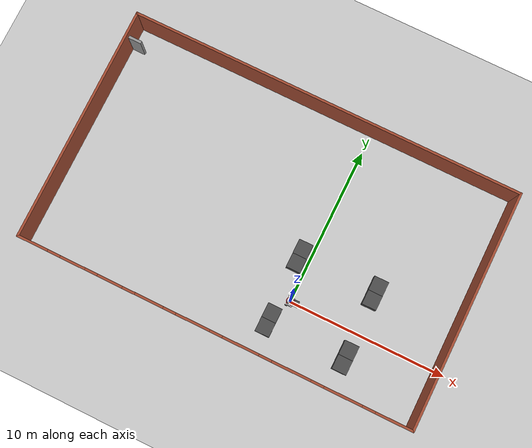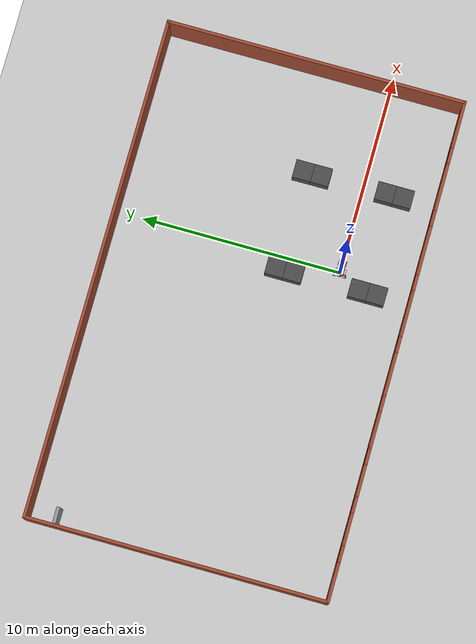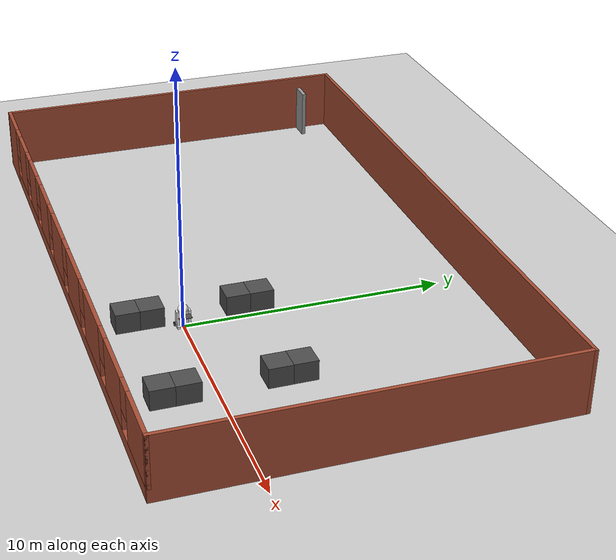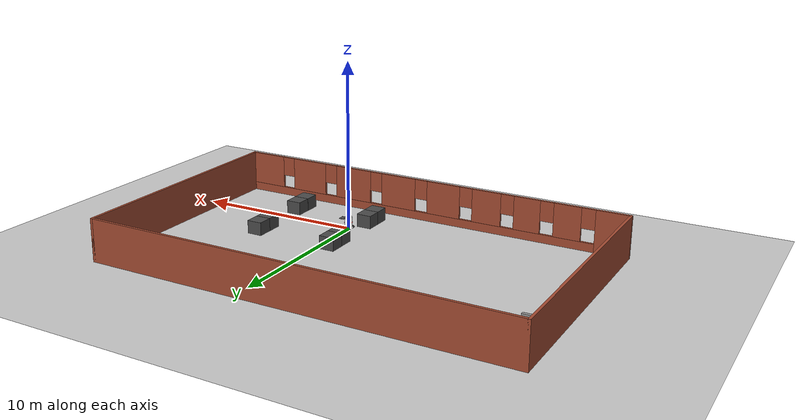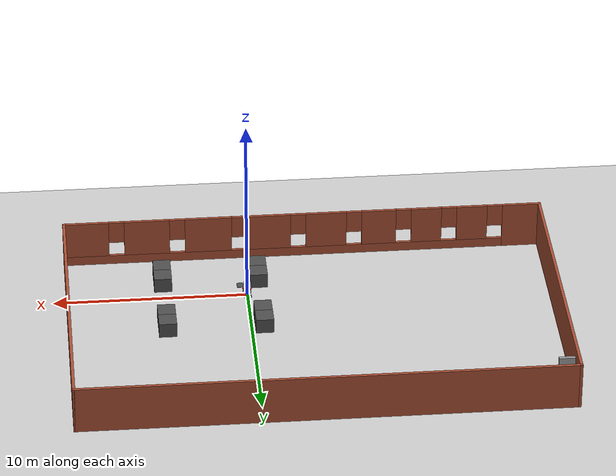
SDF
<sdf version="1.7">
 <world name="default">
  <model name="ground_plane">
   <static>1</static>
   <link name="link">
    <collision name="collision">
     <geometry><plane><normal>0 0 1</normal><size>100 100</size></plane></geometry>
     <surface><friction><ode><mu>100</mu><mu2>50</mu2></ode></friction></surface>
    </collision>
    <visual name="visual">
     <cast_shadows>0</cast_shadows>
     <geometry><plane><normal>0 0 1</normal><size>100 100</size></plane></geometry>
     <material>
      <script><uri>file://media/materials/scripts/gazebo.material</uri><name>Gazebo/Grey</name></script>
     </material>
    </visual>
   </link>
  </model>
  <model name="med_walls">
   <pose>-3.1637 3.8217 0 0 -0 0</pose>
   <link name="Door_1">
    <collision name="Door_1_Collision">
     <geometry><box><size>0.9 0.17 2</size></box></geometry>
     <pose>0 0 1 0 -0 0</pose>
    </collision>
    <visual name="Door_1_Visual">
     <pose>0 0 1 0 -0 0</pose>
     <geometry><box><size>0.9 0.17 2</size></box></geometry>
     <material>
      <script><uri>file://media/materials/scripts/gazebo.material</uri><name>Gazebo/Grey</name></script>
     </material>
    </visual>
    <pose>-11.9817 6.03627 0 0 -0 0</pose>
   </link>
   <link name="Wall_10">
    <pose>0 -7.425 0 0 -0 0</pose>
    <visual name="Wall_10_Visual_0">
     <pose>-11.4954 0 1.25 0 -0 0</pose>
     <geometry><box><size>2.00915 0.15 2.5</size></box></geometry>
     <material>
      <script><uri>file://media/materials/scripts/gazebo.material</uri><name>Gazebo/Bricks</name></script>
      <ambient>1 1 1 1</ambient>
     </material>
     <meta><layer>0</layer></meta>
    </visual>
    <collision name="Wall_10_Collision_0">
     <geometry><box><size>2.00915 0.15 2.5</size></box></geometry>
     <pose>-11.4954 0 1.25 0 -0 0</pose>
    </collision>
    <visual name="Wall_10_Visual_1">
     <pose>1.00457 0 0.25 0 -0 0</pose>
     <geometry><box><size>22.9909 0.15 0.5</size></box></geometry>
     <material>
      <script><uri>file://media/materials/scripts/gazebo.material</uri><name>Gazebo/Bricks</name></script>
      <ambient>1 1 1 1</ambient>
     </material>
     <meta><layer>0</layer></meta>
    </visual>
    <collision name="Wall_10_Collision_1">
     <geometry><box><size>22.9909 0.15 0.5</size></box></geometry>
     <pose>1.00457 0 0.25 0 -0 0</pose>
    </collision>
    <visual name="Wall_10_Visual_2">
     <pose>-8.88936 0 1.5 0 -0 0</pose>
     <geometry><box><size>1.60298 0.15 2</size></box></geometry>
     <material>
      <script><uri>file://media/materials/scripts/gazebo.material</uri><name>Gazebo/Bricks</name></script>
      <ambient>1 1 1 1</ambient>
     </material>
     <meta><layer>0</layer></meta>
    </visual>
    <collision name="Wall_10_Collision_2">
     <geometry><box><size>1.60298 0.15 2</size></box></geometry>
     <pose>-8.88936 0 1.5 0 -0 0</pose>
    </collision>
    <visual name="Wall_10_Visual_3">
     <pose>-6.49398 0 1.5 0 -0 0</pose>
     <geometry><box><size>1.58777 0.15 2</size></box></geometry>
     <material>
      <script><uri>file://media/materials/scripts/gazebo.material</uri><name>Gazebo/Bricks</name></script>
      <ambient>1 1 1 1</ambient>
     </material>
     <meta><layer>0</layer></meta>
    </visual>
    <collision name="Wall_10_Collision_3">
     <geometry><box><size>1.58777 0.15 2</size></box></geometry>
     <pose>-6.49398 0 1.5 0 -0 0</pose>
    </collision>
    <visual name="Wall_10_Visual_4">
     <pose>-3.99975 0 1.5 0 -0 0</pose>
     <geometry><box><size>1.8007 0.15 2</size></box></geometry>
     <material>
      <script><uri>file://media/materials/scripts/gazebo.material</uri><name>Gazebo/Bricks</name></script>
      <ambient>1 1 1 1</ambient>
     </material>
     <meta><layer>0</layer></meta>
    </visual>
    <collision name="Wall_10_Collision_4">
     <geometry><box><size>1.8007 0.15 2</size></box></geometry>
     <pose>-3.99975 0 1.5 0 -0 0</pose>
    </collision>
    <visual name="Wall_10_Visual_5">
     <pose>-1.23175 0 1.5 0 -0 0</pose>
     <geometry><box><size>2.13529 0.15 2</size></box></geometry>
     <material>
      <script><uri>file://media/materials/scripts/gazebo.material</uri><name>Gazebo/Bricks</name></script>
      <ambient>1 1 1 1</ambient>
     </material>
     <meta><layer>0</layer></meta>
    </visual>
    <collision name="Wall_10_Collision_5">
     <geometry><box><size>2.13529 0.15 2</size></box></geometry>
     <pose>-1.23175 0 1.5 0 -0 0</pose>
    </collision>
    <visual name="Wall_10_Visual_6">
     <pose>1.77197 0 1.5 0 -0 0</pose>
     <geometry><box><size>2.27217 0.15 2</size></box></geometry>
     <material>
      <script><uri>file://media/materials/scripts/gazebo.material</uri><name>Gazebo/Bricks</name></script>
      <ambient>1 1 1 1</ambient>
     </material>
     <meta><layer>0</layer></meta>
    </visual>
    <collision name="Wall_10_Collision_6">
     <geometry><box><size>2.27217 0.15 2</size></box></geometry>
     <pose>1.77197 0 1.5 0 -0 0</pose>
    </collision>
    <visual name="Wall_10_Visual_7">
     <pose>4.92779 0 1.5 0 -0 0</pose>
     <geometry><box><size>2.43946 0.15 2</size></box></geometry>
     <material>
      <script><uri>file://media/materials/scripts/gazebo.material</uri><name>Gazebo/Bricks</name></script>
      <ambient>1 1 1 1</ambient>
     </material>
     <meta><layer>0</layer></meta>
    </visual>
    <collision name="Wall_10_Collision_7">
     <geometry><box><size>2.43946 0.15 2</size></box></geometry>
     <pose>4.92779 0 1.5 0 -0 0</pose>
    </collision>
    <visual name="Wall_10_Visual_8">
     <pose>8.12923 0 1.5 0 -0 0</pose>
     <geometry><box><size>2.36342 0.15 2</size></box></geometry>
     <material>
      <script><uri>file://media/materials/scripts/gazebo.material</uri><name>Gazebo/Bricks</name></script>
      <ambient>1 1 1 1</ambient>
     </material>
     <meta><layer>0</layer></meta>
    </visual>
    <collision name="Wall_10_Collision_8">
     <geometry><box><size>2.36342 0.15 2</size></box></geometry>
     <pose>8.12923 0 1.5 0 -0 0</pose>
    </collision>
    <visual name="Wall_10_Visual_9">
     <pose>11.3055 0 1.5 0 -0 0</pose>
     <geometry><box><size>2.38906 0.15 2</size></box></geometry>
     <material>
      <script><uri>file://media/materials/scripts/gazebo.material</uri><name>Gazebo/Bricks</name></script>
      <ambient>1 1 1 1</ambient>
     </material>
     <meta><layer>0</layer></meta>
    </visual>
    <collision name="Wall_10_Collision_9">
     <geometry><box><size>2.38906 0.15 2</size></box></geometry>
     <pose>11.3055 0 1.5 0 -0 0</pose>
    </collision>
    <visual name="Wall_10_Visual_10">
     <pose>-10.0909 0 1.9 0 -0 0</pose>
     <geometry><box><size>0.8 0.15 1.2</size></box></geometry>
     <material>
      <script><uri>file://media/materials/scripts/gazebo.material</uri><name>Gazebo/Bricks</name></script>
      <ambient>1 1 1 1</ambient>
     </material>
     <meta><layer>0</layer></meta>
    </visual>
    <collision name="Wall_10_Collision_10">
     <geometry><box><size>0.8 0.15 1.2</size></box></geometry>
     <pose>-10.0909 0 1.9 0 -0 0</pose>
    </collision>
    <visual name="Wall_10_Visual_11">
     <pose>-7.68787 0 1.9 0 -0 0</pose>
     <geometry><box><size>0.8 0.15 1.2</size></box></geometry>
     <material>
      <script><uri>file://media/materials/scripts/gazebo.material</uri><name>Gazebo/Bricks</name></script>
      <ambient>1 1 1 1</ambient>
     </material>
     <meta><layer>0</layer></meta>
    </visual>
    <collision name="Wall_10_Collision_11">
     <geometry><box><size>0.8 0.15 1.2</size></box></geometry>
     <pose>-7.68787 0 1.9 0 -0 0</pose>
    </collision>
    <visual name="Wall_10_Visual_12">
     <pose>-5.3001 0 1.9 0 -0 0</pose>
     <geometry><box><size>0.8 0.15 1.2</size></box></geometry>
     <material>
      <script><uri>file://media/materials/scripts/gazebo.material</uri><name>Gazebo/Bricks</name></script>
      <ambient>1 1 1 1</ambient>
     </material>
     <meta><layer>0</layer></meta>
    </visual>
    <collision name="Wall_10_Collision_12">
     <geometry><box><size>0.8 0.15 1.2</size></box></geometry>
     <pose>-5.3001 0 1.9 0 -0 0</pose>
    </collision>
    <visual name="Wall_10_Visual_13">
     <pose>-2.6994 0 1.9 0 -0 0</pose>
     <geometry><box><size>0.8 0.15 1.2</size></box></geometry>
     <material>
      <script><uri>file://media/materials/scripts/gazebo.material</uri><name>Gazebo/Bricks</name></script>
      <ambient>1 1 1 1</ambient>
     </material>
     <meta><layer>0</layer></meta>
    </visual>
    <collision name="Wall_10_Collision_13">
     <geometry><box><size>0.8 0.15 1.2</size></box></geometry>
     <pose>-2.6994 0 1.9 0 -0 0</pose>
    </collision>
    <visual name="Wall_10_Visual_14">
     <pose>0.235889 0 1.9 0 -0 0</pose>
     <geometry><box><size>0.8 0.15 1.2</size></box></geometry>
     <material>
      <script><uri>file://media/materials/scripts/gazebo.material</uri><name>Gazebo/Bricks</name></script>
      <ambient>1 1 1 1</ambient>
     </material>
     <meta><layer>0</layer></meta>
    </visual>
    <collision name="Wall_10_Collision_14">
     <geometry><box><size>0.8 0.15 1.2</size></box></geometry>
     <pose>0.235889 0 1.9 0 -0 0</pose>
    </collision>
    <visual name="Wall_10_Visual_15">
     <pose>3.30806 0 1.9 0 -0 0</pose>
     <geometry><box><size>0.8 0.15 1.2</size></box></geometry>
     <material>
      <script><uri>file://media/materials/scripts/gazebo.material</uri><name>Gazebo/Bricks</name></script>
      <ambient>1 1 1 1</ambient>
     </material>
     <meta><layer>0</layer></meta>
    </visual>
    <collision name="Wall_10_Collision_15">
     <geometry><box><size>0.8 0.15 1.2</size></box></geometry>
     <pose>3.30806 0 1.9 0 -0 0</pose>
    </collision>
    <visual name="Wall_10_Visual_16">
     <pose>6.54752 0 1.9 0 -0 0</pose>
     <geometry><box><size>0.8 0.15 1.2</size></box></geometry>
     <material>
      <script><uri>file://media/materials/scripts/gazebo.material</uri><name>Gazebo/Bricks</name></script>
      <ambient>1 1 1 1</ambient>
     </material>
     <meta><layer>0</layer></meta>
    </visual>
    <collision name="Wall_10_Collision_16">
     <geometry><box><size>0.8 0.15 1.2</size></box></geometry>
     <pose>6.54752 0 1.9 0 -0 0</pose>
    </collision>
    <visual name="Wall_10_Visual_17">
     <pose>9.71094 0 1.9 0 -0 0</pose>
     <geometry><box><size>0.8 0.15 1.2</size></box></geometry>
     <material>
      <script><uri>file://media/materials/scripts/gazebo.material</uri><name>Gazebo/Bricks</name></script>
      <ambient>1 1 1 1</ambient>
     </material>
     <meta><layer>0</layer></meta>
    </visual>
    <collision name="Wall_10_Collision_17">
     <geometry><box><size>0.8 0.15 1.2</size></box></geometry>
     <pose>9.71094 0 1.9 0 -0 0</pose>
    </collision>
   </link>
   <link name="Wall_17">
    <collision name="Wall_17_Collision">
     <geometry><box><size>15 0.15 2.5</size></box></geometry>
     <pose>0 0 1.25 0 -0 0</pose>
    </collision>
    <visual name="Wall_17_Visual">
     <pose>0 0 1.25 0 -0 0</pose>
     <geometry><box><size>15 0.15 2.5</size></box></geometry>
     <material>
      <script><uri>file://media/materials/scripts/gazebo.material</uri><name>Gazebo/Bricks</name></script>
      <ambient>1 1 1 1</ambient>
     </material>
     <meta><layer>0</layer></meta>
    </visual>
    <pose>12.425 0 0 0 -0 1.5708</pose>
   </link>
   <link name="Wall_19">
    <collision name="Wall_19_Collision">
     <geometry><box><size>15 0.15 2.5</size></box></geometry>
     <pose>0 0 1.25 0 -0 0</pose>
    </collision>
    <visual name="Wall_19_Visual">
     <pose>0 0 1.25 0 -0 0</pose>
     <geometry><box><size>15 0.15 2.5</size></box></geometry>
     <material>
      <script><uri>file://media/materials/scripts/gazebo.material</uri><name>Gazebo/Bricks</name></script>
      <ambient>1 1 1 1</ambient>
     </material>
     <meta><layer>0</layer></meta>
    </visual>
    <pose>-12.425 0 0 0 -0 1.5708</pose>
   </link>
   <link name="Wall_21">
    <collision name="Wall_21_Collision">
     <geometry><box><size>25 0.15 2.5</size></box></geometry>
     <pose>0 0 1.25 0 -0 0</pose>
    </collision>
    <visual name="Wall_21_Visual">
     <pose>0 0 1.25 0 -0 0</pose>
     <geometry><box><size>25 0.15 2.5</size></box></geometry>
     <material>
      <script><uri>file://media/materials/scripts/gazebo.material</uri><name>Gazebo/Bricks</name></script>
      <ambient>1 1 1 1</ambient>
     </material>
     <meta><layer>0</layer></meta>
    </visual>
    <pose>0 7.425 0 0 -0 0</pose>
   </link>
   <static>1</static>
  </model>
  <model name="waiter_robot">
   <link name="base_link">
    <inertial>
     <pose>0.014594 0 -0.064715 0 -0 0</pose>
     <mass>3.86</mass>
     <inertia>
      <ixx>0.353101</ixx>
      <ixy>0</ixy>
      <ixz>-0.00757895</ixz>
      <iyy>0.285062</iyy>
      <iyz>0</iyz>
      <izz>0.158627</izz>
     </inertia>
    </inertial>
    <collision name="base_link_collision">
     <geometry><cylinder><length>0.6</length><radius>0.2</radius></cylinder></geometry>
    </collision>
    <collision name="base_link_fixed_joint_lump__left_leg_collision_1">
     <pose>0 0.22 -0.05 3.14159 1.57079 3.14159</pose>
     <geometry><box><size>0.6 0.1 0.2</size></box></geometry>
    </collision>
    <collision name="base_link_fixed_joint_lump__left_base_collision_2">
     <pose>0 0.22 -0.35 0 -0 0</pose>
     <geometry><box><size>0.4 0.1 0.1</size></box></geometry>
    </collision>
    <collision name="base_link_fixed_joint_lump__tray_pole_collision_3">
     <pose>0.24 0 0.2 3.14159 1.57079 3.14159</pose>
     <geometry><cylinder><length>0.12</length><radius>0.01</radius></cylinder></geometry>
    </collision>
    <collision name="base_link_fixed_joint_lump__tray_collision_4">
     <pose>0.38 0 0.2 0 -0 0</pose>
     <geometry><box><size>0.3 0.4 0.02</size></box></geometry>
    </collision>
    <collision name="base_link_fixed_joint_lump__right_leg_collision_5">
     <pose>0 -0.22 -0.05 3.14159 1.57079 3.14159</pose>
     <geometry><box><size>0.6 0.1 0.2</size></box></geometry>
    </collision>
    <collision name="base_link_fixed_joint_lump__right_base_collision_6">
     <pose>0 -0.22 -0.35 0 -0 0</pose>
     <geometry><box><size>0.4 0.1 0.1</size></box></geometry>
    </collision>
    <collision name="base_link_fixed_joint_lump__bumper_collision_collision_7">
     <geometry><cylinder><length>0.01</length><radius>0.25</radius></cylinder></geometry>
    </collision>
    <collision name="base_link_fixed_joint_lump__caster_wheel_collision_8">
     <pose>0.133333 0 -0.35 0 -0 0</pose>
     <geometry><sphere><radius>0.08</radius></sphere></geometry>
     <surface><friction><ode><mu>0.001</mu><mu2>0.001</mu2></ode></friction></surface>
    </collision>
    <collision name="base_link_fixed_joint_lump__head_collision_9">
     <pose>0 0 0.3 0 -0 0</pose>
     <geometry><sphere><radius>0.2</radius></sphere></geometry>
    </collision>
    <collision name="base_link_fixed_joint_lump__camera_link_collision_10">
     <pose>0 0 0.52 0 -0 0</pose>
     <geometry><cylinder><length>0.04</length><radius>0.05</radius></cylinder></geometry>
    </collision>
    <collision name="base_link_fixed_joint_lump__laser_frame_collision_11">
     <geometry><cylinder><length>0.04</length><radius>0.05</radius></cylinder></geometry>
    </collision>
    <visual name="base_link_visual">
     <geometry><cylinder><length>0.6</length><radius>0.2</radius></cylinder></geometry>
     <material>
      <script><name>Gazebo/White</name><uri>file://media/materials/scripts/gazebo.material</uri></script>
     </material>
    </visual>
    <visual name="base_link_fixed_joint_lump__left_leg_visual_1">
     <pose>0 0.22 -0.05 3.14159 1.57079 3.14159</pose>
     <geometry><box><size>0.6 0.1 0.2</size></box></geometry>
     <material>
      <script><name>Gazebo/White</name><uri>file://media/materials/scripts/gazebo.material</uri></script>
     </material>
    </visual>
    <visual name="base_link_fixed_joint_lump__left_base_visual_2">
     <pose>0 0.22 -0.35 0 -0 0</pose>
     <geometry><box><size>0.4 0.1 0.1</size></box></geometry>
     <material>
      <script><name>Gazebo/White</name><uri>file://media/materials/scripts/gazebo.material</uri></script>
     </material>
    </visual>
    <visual name="base_link_fixed_joint_lump__tray_pole_visual_3">
     <pose>0.24 0 0.2 3.14159 1.57079 3.14159</pose>
     <geometry><cylinder><length>0.12</length><radius>0.01</radius></cylinder></geometry>
     <material>
      <script><name>Gazebo/DarkGrey</name><uri>file://media/materials/scripts/gazebo.material</uri></script>
     </material>
    </visual>
    <visual name="base_link_fixed_joint_lump__tray_visual_4">
     <pose>0.38 0 0.2 0 -0 0</pose>
     <geometry><box><size>0.3 0.4 0.02</size></box></geometry>
     <material>
      <script><name>Gazebo/DarkGrey</name><uri>file://media/materials/scripts/gazebo.material</uri></script>
     </material>
    </visual>
    <visual name="base_link_fixed_joint_lump__right_leg_visual_5">
     <pose>0 -0.22 -0.05 3.14159 1.57079 3.14159</pose>
     <geometry><box><size>0.6 0.1 0.2</size></box></geometry>
     <material>
      <script><name>Gazebo/White</name><uri>file://media/materials/scripts/gazebo.material</uri></script>
     </material>
    </visual>
    <visual name="base_link_fixed_joint_lump__right_base_visual_6">
     <pose>0 -0.22 -0.35 0 -0 0</pose>
     <geometry><box><size>0.4 0.1 0.1</size></box></geometry>
     <material>
      <script><name>Gazebo/White</name><uri>file://media/materials/scripts/gazebo.material</uri></script>
     </material>
    </visual>
    <visual name="base_link_fixed_joint_lump__bumper_link_visual_7">
     <geometry><cylinder><length>0.01</length><radius>0.25</radius></cylinder></geometry>
     <material>
      <script><name>Gazebo/Red</name><uri>file://media/materials/scripts/gazebo.material</uri></script>
     </material>
    </visual>
    <visual name="base_link_fixed_joint_lump__caster_wheel_visual_8">
     <pose>0.133333 0 -0.35 0 -0 0</pose>
     <geometry><sphere><radius>0.08</radius></sphere></geometry>
     <material>
      <script><name>Gazebo/Black</name><uri>file://media/materials/scripts/gazebo.material</uri></script>
     </material>
    </visual>
    <visual name="base_link_fixed_joint_lump__head_visual_9">
     <pose>0 0 0.3 0 -0 0</pose>
     <geometry><sphere><radius>0.2</radius></sphere></geometry>
     <material>
      <script><name>Gazebo/White</name><uri>file://media/materials/scripts/gazebo.material</uri></script>
     </material>
    </visual>
    <visual name="base_link_fixed_joint_lump__camera_link_visual_10">
     <pose>0 0 0.52 0 -0 0</pose>
     <geometry><cylinder><length>0.04</length><radius>0.05</radius></cylinder></geometry>
     <material>
      <script><name>Gazebo/Red</name><uri>file://media/materials/scripts/gazebo.material</uri></script>
     </material>
    </visual>
    <visual name="base_link_fixed_joint_lump__laser_frame_visual_11">
     <geometry><cylinder><length>0.04</length><radius>0.05</radius></cylinder></geometry>
     <material>
      <script><name>Gazebo/DarkGrey</name><uri>file://media/materials/scripts/gazebo.material</uri></script>
     </material>
    </visual>
    <sensor name="bumper_contact" type="contact">
     <always_on>1</always_on>
     <update_rate>10</update_rate>
     <contact><collision>base_link_collision_bumper_link</collision><topic>__default_topic__</topic></contact>
     <plugin name="bumper_plugin" filename="libgazebo_ros_bumper.so">
      <ros><namespace>/bumper</namespace></ros>
      <bumperTopicName>contact</bumperTopicName>
      <frameName>bumper_link</frameName>
     </plugin>
    </sensor>
    <sensor name="camera" type="camera">
     <visualize>1</visualize>
     <update_rate>10</update_rate>
     <camera>
      <horizontal_fov>1.089</horizontal_fov>
      <image><format>R8G8B8</format><width>640</width><height>480</height></image>
      <clip><near>0.05</near><far>8</far></clip>
     </camera>
     <plugin name="camera_controller" filename="libgazebo_ros_camera.so">
      <frame_name>camera_link_optical</frame_name>
     </plugin>
     <pose>0 0 0.52 0 -0 0</pose>
    </sensor>
    <sensor name="laser" type="ray">
     <visualize>0</visualize>
     <update_rate>10</update_rate>
     <ray>
      <scan>
       <horizontal>
        <samples>360</samples>
        <min_angle>-3.14</min_angle>
        <max_angle>3.14</max_angle>
        <resolution>1</resolution>
       </horizontal>
       <vertical><samples>1</samples><min_angle>0</min_angle><max_angle>0</max_angle></vertical>
      </scan>
      <range><min>0.3</min><max>12</max></range>
     </ray>
     <plugin name="laser_controller" filename="libgazebo_ros_ray_sensor.so">
      <ros><argument>~/out:=scan</argument></ros>
      <output_type>sensor_msgs/LaserScan</output_type>
      <frame_name>laser_frame</frame_name>
     </plugin>
    </sensor>
   </link>
   <joint name="left_back_wheel_joint" type="revolute">
    <pose relative_to="base_link">-0.133333 0.295 -0.35 0 -0 0</pose>
    <parent>base_link</parent>
    <child>left_back_wheel</child>
    <axis>
     <xyz>0 1 0</xyz>
     <limit><lower>-1e+16</lower><upper>1e+16</upper></limit>
     <dynamics><spring_reference>0</spring_reference><spring_stiffness>0</spring_stiffness></dynamics>
    </axis>
   </joint>
   <link name="left_back_wheel">
    <pose relative_to="left_back_wheel_joint">0 0 0 0 -0 0</pose>
    <inertial>
     <pose>0 0 0 1.57075 -0 0</pose>
     <mass>0.5</mass>
     <inertia>
      <ixx>0.000904167</ixx>
      <ixy>0</ixy>
      <ixz>0</ixz>
      <iyy>0.000904167</iyy>
      <iyz>0</iyz>
      <izz>0.0016</izz>
     </inertia>
    </inertial>
    <collision name="left_back_wheel_collision">
     <pose>0 0 0 1.57075 -0 0</pose>
     <geometry><cylinder><length>0.05</length><radius>0.08</radius></cylinder></geometry>
    </collision>
    <visual name="left_back_wheel_visual">
     <pose>0 0 0 1.57075 -0 0</pose>
     <geometry><cylinder><length>0.05</length><radius>0.08</radius></cylinder></geometry>
     <material>
      <script><name>Gazebo/Black</name><uri>file://media/materials/scripts/gazebo.material</uri></script>
     </material>
    </visual>
   </link>
   <joint name="right_back_wheel_joint" type="revolute">
    <pose relative_to="base_link">-0.133333 -0.295 -0.35 0 -0 0</pose>
    <parent>base_link</parent>
    <child>right_back_wheel</child>
    <axis>
     <xyz>0 1 0</xyz>
     <limit><lower>-1e+16</lower><upper>1e+16</upper></limit>
     <dynamics><spring_reference>0</spring_reference><spring_stiffness>0</spring_stiffness></dynamics>
    </axis>
   </joint>
   <link name="right_back_wheel">
    <pose relative_to="right_back_wheel_joint">0 0 0 0 -0 0</pose>
    <inertial>
     <pose>0 0 0 1.57075 -0 0</pose>
     <mass>0.5</mass>
     <inertia>
      <ixx>0.000904167</ixx>
      <ixy>0</ixy>
      <ixz>0</ixz>
      <iyy>0.000904167</iyy>
      <iyz>0</iyz>
      <izz>0.0016</izz>
     </inertia>
    </inertial>
    <collision name="right_back_wheel_collision">
     <pose>0 0 0 1.57075 -0 0</pose>
     <geometry><cylinder><length>0.05</length><radius>0.08</radius></cylinder></geometry>
    </collision>
    <visual name="right_back_wheel_visual">
     <pose>0 0 0 1.57075 -0 0</pose>
     <geometry><cylinder><length>0.05</length><radius>0.08</radius></cylinder></geometry>
     <material>
      <script><name>Gazebo/Black</name><uri>file://media/materials/scripts/gazebo.material</uri></script>
     </material>
    </visual>
   </link>
   <static>0</static>
   <plugin name="gazebo_ros2_control" filename="libgazebo_ros2_control.so">
    <parameters>/root/cafetaria_robot_ws/install/cafeteria_simulation/share/cafeteria_simulation/config/controller_params.yaml</parameters>
    <parameters>/root/cafetaria_robot_ws/install/cafeteria_simulation/share/cafeteria_simulation/config/gaz_ros2_ctl_use_sim.yaml</parameters>
   </plugin>
   <pose>0.005338 0.002207 0.429992 1e-06 1.3e-05 0.018104</pose>
  </model>
  <model name="darkgreybox_clone_0">
   <link name="link">
    <inertial>
     <mass>1</mass>
     <inertia>
      <ixx>0.166667</ixx>
      <ixy>0</ixy>
      <ixz>0</ixz>
      <iyy>0.166667</iyy>
      <iyz>0</iyz>
      <izz>0.166667</izz>
     </inertia>
    </inertial>
    <visual name="visual">
     <geometry><box><size>0.909396 0.912851 0.783272</size></box></geometry>
     <material>
      <script><name>Gazebo/DarkGrey</name><uri>file://media/materials/scripts/gazebo.material</uri></script>
      <shader type="pixel"><normal_map>__default__</normal_map></shader>
      <ambient>0.175 0.175 0.175 1</ambient>
      <diffuse>0.175 0.175 0.175 1</diffuse>
      <specular>0.175 0.175 0.175 1</specular>
      <emissive>0 0 0 1</emissive>
     </material>
    </visual>
    <collision name="collision">
     <geometry><box><size>0.909396 0.912851 0.783272</size></box></geometry>
     <surface>
      <friction>
       <ode><mu>1</mu><mu2>1</mu2><fdir1>0 0 0</fdir1><slip1>0</slip1><slip2>0</slip2></ode>
       <torsional>
        <coefficient>1</coefficient>
        <patch_radius>0</patch_radius>
        <surface_radius>0</surface_radius>
        <use_patch_radius>1</use_patch_radius>
        <ode><slip>0</slip></ode>
       </torsional>
      </friction>
      <bounce><restitution_coefficient>0</restitution_coefficient><threshold>1e+06</threshold></bounce>
      <contact>
       <collide_without_contact>0</collide_without_contact>
       <collide_without_contact_bitmask>1</collide_without_contact_bitmask>
       <collide_bitmask>1</collide_bitmask>
       <ode>
        <soft_cfm>0</soft_cfm>
        <soft_erp>0.2</soft_erp>
        <kp>1e+13</kp>
        <kd>1</kd>
        <max_vel>0.01</max_vel>
        <min_depth>0</min_depth>
       </ode>
       <bullet>
        <split_impulse>1</split_impulse>
        <split_impulse_penetration_threshold>-0.01</split_impulse_penetration_threshold>
        <soft_cfm>0</soft_cfm>
        <soft_erp>0.2</soft_erp>
        <kp>1e+13</kp>
        <kd>1</kd>
       </bullet>
      </contact>
     </surface>
    </collision>
   </link>
   <static>0</static>
   <pose>-0.646975 3.07624 0.391636 0 -0 0.000168</pose>
  </model>
  <model name="darkgreybox_clone_1">
   <link name="link">
    <inertial>
     <mass>1</mass>
     <inertia>
      <ixx>0.166667</ixx>
      <ixy>0</ixy>
      <ixz>0</ixz>
      <iyy>0.166667</iyy>
      <iyz>0</iyz>
      <izz>0.166667</izz>
     </inertia>
    </inertial>
    <visual name="visual">
     <geometry><box><size>0.909396 0.912851 0.783272</size></box></geometry>
     <material>
      <script><name>Gazebo/DarkGrey</name><uri>file://media/materials/scripts/gazebo.material</uri></script>
      <shader type="pixel"><normal_map>__default__</normal_map></shader>
      <ambient>0.175 0.175 0.175 1</ambient>
      <diffuse>0.175 0.175 0.175 1</diffuse>
      <specular>0.175 0.175 0.175 1</specular>
      <emissive>0 0 0 1</emissive>
     </material>
    </visual>
    <collision name="collision">
     <geometry><box><size>0.909396 0.912851 0.783272</size></box></geometry>
     <surface>
      <friction>
       <ode><mu>1</mu><mu2>1</mu2><fdir1>0 0 0</fdir1><slip1>0</slip1><slip2>0</slip2></ode>
       <torsional>
        <coefficient>1</coefficient>
        <patch_radius>0</patch_radius>
        <surface_radius>0</surface_radius>
        <use_patch_radius>1</use_patch_radius>
        <ode><slip>0</slip></ode>
       </torsional>
      </friction>
      <bounce><restitution_coefficient>0</restitution_coefficient><threshold>1e+06</threshold></bounce>
      <contact>
       <collide_without_contact>0</collide_without_contact>
       <collide_without_contact_bitmask>1</collide_without_contact_bitmask>
       <collide_bitmask>1</collide_bitmask>
       <ode>
        <soft_cfm>0</soft_cfm>
        <soft_erp>0.2</soft_erp>
        <kp>1e+13</kp>
        <kd>1</kd>
        <max_vel>0.01</max_vel>
        <min_depth>0</min_depth>
       </ode>
       <bullet>
        <split_impulse>1</split_impulse>
        <split_impulse_penetration_threshold>-0.01</split_impulse_penetration_threshold>
        <soft_cfm>0</soft_cfm>
        <soft_erp>0.2</soft_erp>
        <kp>1e+13</kp>
        <kd>1</kd>
       </bullet>
      </contact>
     </surface>
    </collision>
   </link>
   <static>0</static>
   <pose>-0.646092 2.16475 0.391636 0 -0 0.000168</pose>
  </model>
  <model name="darkgreybox_clone_2">
   <link name="link">
    <inertial>
     <mass>1</mass>
     <inertia>
      <ixx>0.166667</ixx>
      <ixy>0</ixy>
      <ixz>0</ixz>
      <iyy>0.166667</iyy>
      <iyz>0</iyz>
      <izz>0.166667</izz>
     </inertia>
    </inertial>
    <visual name="visual">
     <geometry><box><size>0.909396 0.912851 0.783272</size></box></geometry>
     <material>
      <script><name>Gazebo/DarkGrey</name><uri>file://media/materials/scripts/gazebo.material</uri></script>
      <shader type="pixel"><normal_map>__default__</normal_map></shader>
      <ambient>0.175 0.175 0.175 1</ambient>
      <diffuse>0.175 0.175 0.175 1</diffuse>
      <specular>0.175 0.175 0.175 1</specular>
      <emissive>0 0 0 1</emissive>
     </material>
    </visual>
    <collision name="collision">
     <geometry><box><size>0.909396 0.912851 0.783272</size></box></geometry>
     <surface>
      <friction>
       <ode><mu>1</mu><mu2>1</mu2><fdir1>0 0 0</fdir1><slip1>0</slip1><slip2>0</slip2></ode>
       <torsional>
        <coefficient>1</coefficient>
        <patch_radius>0</patch_radius>
        <surface_radius>0</surface_radius>
        <use_patch_radius>1</use_patch_radius>
        <ode><slip>0</slip></ode>
       </torsional>
      </friction>
      <bounce><restitution_coefficient>0</restitution_coefficient><threshold>1e+06</threshold></bounce>
      <contact>
       <collide_without_contact>0</collide_without_contact>
       <collide_without_contact_bitmask>1</collide_without_contact_bitmask>
       <collide_bitmask>1</collide_bitmask>
       <ode>
        <soft_cfm>0</soft_cfm>
        <soft_erp>0.2</soft_erp>
        <kp>1e+13</kp>
        <kd>1</kd>
        <max_vel>0.01</max_vel>
        <min_depth>0</min_depth>
       </ode>
       <bullet>
        <split_impulse>1</split_impulse>
        <split_impulse_penetration_threshold>-0.01</split_impulse_penetration_threshold>
        <soft_cfm>0</soft_cfm>
        <soft_erp>0.2</soft_erp>
        <kp>1e+13</kp>
        <kd>1</kd>
       </bullet>
      </contact>
     </surface>
    </collision>
   </link>
   <static>0</static>
   <pose>4.28151 2.14827 0.391636 0 -0 0.000168</pose>
  </model>
  <model name="darkgreybox_clone_3">
   <link name="link">
    <inertial>
     <mass>1</mass>
     <inertia>
      <ixx>0.166667</ixx>
      <ixy>0</ixy>
      <ixz>0</ixz>
      <iyy>0.166667</iyy>
      <iyz>0</iyz>
      <izz>0.166667</izz>
     </inertia>
    </inertial>
    <visual name="visual">
     <geometry><box><size>0.909396 0.912851 0.783272</size></box></geometry>
     <material>
      <script><name>Gazebo/DarkGrey</name><uri>file://media/materials/scripts/gazebo.material</uri></script>
      <shader type="pixel"><normal_map>__default__</normal_map></shader>
      <ambient>0.175 0.175 0.175 1</ambient>
      <diffuse>0.175 0.175 0.175 1</diffuse>
      <specular>0.175 0.175 0.175 1</specular>
      <emissive>0 0 0 1</emissive>
     </material>
    </visual>
    <collision name="collision">
     <geometry><box><size>0.909396 0.912851 0.783272</size></box></geometry>
     <surface>
      <friction>
       <ode><mu>1</mu><mu2>1</mu2><fdir1>0 0 0</fdir1><slip1>0</slip1><slip2>0</slip2></ode>
       <torsional>
        <coefficient>1</coefficient>
        <patch_radius>0</patch_radius>
        <surface_radius>0</surface_radius>
        <use_patch_radius>1</use_patch_radius>
        <ode><slip>0</slip></ode>
       </torsional>
      </friction>
      <bounce><restitution_coefficient>0</restitution_coefficient><threshold>1e+06</threshold></bounce>
      <contact>
       <collide_without_contact>0</collide_without_contact>
       <collide_without_contact_bitmask>1</collide_without_contact_bitmask>
       <collide_bitmask>1</collide_bitmask>
       <ode>
        <soft_cfm>0</soft_cfm>
        <soft_erp>0.2</soft_erp>
        <kp>1e+13</kp>
        <kd>1</kd>
        <max_vel>0.01</max_vel>
        <min_depth>0</min_depth>
       </ode>
       <bullet>
        <split_impulse>1</split_impulse>
        <split_impulse_penetration_threshold>-0.01</split_impulse_penetration_threshold>
        <soft_cfm>0</soft_cfm>
        <soft_erp>0.2</soft_erp>
        <kp>1e+13</kp>
        <kd>1</kd>
       </bullet>
      </contact>
     </surface>
    </collision>
   </link>
   <static>0</static>
   <pose>4.27643 3.05079 0.391636 0 -0 0.000168</pose>
  </model>
  <model name="darkgreybox_clone_10">
   <link name="link">
    <inertial>
     <mass>1</mass>
     <inertia>
      <ixx>0.166667</ixx>
      <ixy>0</ixy>
      <ixz>0</ixz>
      <iyy>0.166667</iyy>
      <iyz>0</iyz>
      <izz>0.166667</izz>
     </inertia>
    </inertial>
    <visual name="visual">
     <geometry><box><size>0.909396 0.912851 0.783272</size></box></geometry>
     <material>
      <script><name>Gazebo/DarkGrey</name><uri>file://media/materials/scripts/gazebo.material</uri></script>
      <shader type="pixel"><normal_map>__default__</normal_map></shader>
      <ambient>0.175 0.175 0.175 1</ambient>
      <diffuse>0.175 0.175 0.175 1</diffuse>
      <specular>0.175 0.175 0.175 1</specular>
      <emissive>0 0 0 1</emissive>
     </material>
    </visual>
    <collision name="collision">
     <geometry><box><size>0.909396 0.912851 0.783272</size></box></geometry>
     <surface>
      <friction>
       <ode><mu>1</mu><mu2>1</mu2><fdir1>0 0 0</fdir1><slip1>0</slip1><slip2>0</slip2></ode>
       <torsional>
        <coefficient>1</coefficient>
        <patch_radius>0</patch_radius>
        <surface_radius>0</surface_radius>
        <use_patch_radius>1</use_patch_radius>
        <ode><slip>0</slip></ode>
       </torsional>
      </friction>
      <bounce><restitution_coefficient>0</restitution_coefficient><threshold>1e+06</threshold></bounce>
      <contact>
       <collide_without_contact>0</collide_without_contact>
       <collide_without_contact_bitmask>1</collide_without_contact_bitmask>
       <collide_bitmask>1</collide_bitmask>
       <ode>
        <soft_cfm>0</soft_cfm>
        <soft_erp>0.2</soft_erp>
        <kp>1e+13</kp>
        <kd>1</kd>
        <max_vel>0.01</max_vel>
        <min_depth>0</min_depth>
       </ode>
       <bullet>
        <split_impulse>1</split_impulse>
        <split_impulse_penetration_threshold>-0.01</split_impulse_penetration_threshold>
        <soft_cfm>0</soft_cfm>
        <soft_erp>0.2</soft_erp>
        <kp>1e+13</kp>
        <kd>1</kd>
       </bullet>
      </contact>
     </surface>
    </collision>
   </link>
   <static>0</static>
   <pose>-0.648313 -1.08673 0.391636 0 -0 0.000168</pose>
  </model>
  <model name="darkgreybox_clone_11">
   <link name="link">
    <inertial>
     <mass>1</mass>
     <inertia>
      <ixx>0.166667</ixx>
      <ixy>0</ixy>
      <ixz>0</ixz>
      <iyy>0.166667</iyy>
      <iyz>0</iyz>
      <izz>0.166667</izz>
     </inertia>
    </inertial>
    <visual name="visual">
     <geometry><box><size>0.909396 0.912851 0.783272</size></box></geometry>
     <material>
      <script><name>Gazebo/DarkGrey</name><uri>file://media/materials/scripts/gazebo.material</uri></script>
      <shader type="pixel"><normal_map>__default__</normal_map></shader>
      <ambient>0.175 0.175 0.175 1</ambient>
      <diffuse>0.175 0.175 0.175 1</diffuse>
      <specular>0.175 0.175 0.175 1</specular>
      <emissive>0 0 0 1</emissive>
     </material>
    </visual>
    <collision name="collision">
     <geometry><box><size>0.909396 0.912851 0.783272</size></box></geometry>
     <surface>
      <friction>
       <ode><mu>1</mu><mu2>1</mu2><fdir1>0 0 0</fdir1><slip1>0</slip1><slip2>0</slip2></ode>
       <torsional>
        <coefficient>1</coefficient>
        <patch_radius>0</patch_radius>
        <surface_radius>0</surface_radius>
        <use_patch_radius>1</use_patch_radius>
        <ode><slip>0</slip></ode>
       </torsional>
      </friction>
      <bounce><restitution_coefficient>0</restitution_coefficient><threshold>1e+06</threshold></bounce>
      <contact>
       <collide_without_contact>0</collide_without_contact>
       <collide_without_contact_bitmask>1</collide_without_contact_bitmask>
       <collide_bitmask>1</collide_bitmask>
       <ode>
        <soft_cfm>0</soft_cfm>
        <soft_erp>0.2</soft_erp>
        <kp>1e+13</kp>
        <kd>1</kd>
        <max_vel>0.01</max_vel>
        <min_depth>0</min_depth>
       </ode>
       <bullet>
        <split_impulse>1</split_impulse>
        <split_impulse_penetration_threshold>-0.01</split_impulse_penetration_threshold>
        <soft_cfm>0</soft_cfm>
        <soft_erp>0.2</soft_erp>
        <kp>1e+13</kp>
        <kd>1</kd>
       </bullet>
      </contact>
     </surface>
    </collision>
   </link>
   <static>0</static>
   <pose>-0.649104 -1.99462 0.391636 0 -0 0.000168</pose>
  </model>
  <model name="darkgreybox_clone_12">
   <link name="link">
    <inertial>
     <mass>1</mass>
     <inertia>
      <ixx>0.166667</ixx>
      <ixy>0</ixy>
      <ixz>0</ixz>
      <iyy>0.166667</iyy>
      <iyz>0</iyz>
      <izz>0.166667</izz>
     </inertia>
    </inertial>
    <visual name="visual">
     <geometry><box><size>0.909396 0.912851 0.783272</size></box></geometry>
     <material>
      <script><name>Gazebo/DarkGrey</name><uri>file://media/materials/scripts/gazebo.material</uri></script>
      <shader type="pixel"><normal_map>__default__</normal_map></shader>
      <ambient>0.175 0.175 0.175 1</ambient>
      <diffuse>0.175 0.175 0.175 1</diffuse>
      <specular>0.175 0.175 0.175 1</specular>
      <emissive>0 0 0 1</emissive>
     </material>
    </visual>
    <collision name="collision">
     <geometry><box><size>0.909396 0.912851 0.783272</size></box></geometry>
     <surface>
      <friction>
       <ode><mu>1</mu><mu2>1</mu2><fdir1>0 0 0</fdir1><slip1>0</slip1><slip2>0</slip2></ode>
       <torsional>
        <coefficient>1</coefficient>
        <patch_radius>0</patch_radius>
        <surface_radius>0</surface_radius>
        <use_patch_radius>1</use_patch_radius>
        <ode><slip>0</slip></ode>
       </torsional>
      </friction>
      <bounce><restitution_coefficient>0</restitution_coefficient><threshold>1e+06</threshold></bounce>
      <contact>
       <collide_without_contact>0</collide_without_contact>
       <collide_without_contact_bitmask>1</collide_without_contact_bitmask>
       <collide_bitmask>1</collide_bitmask>
       <ode>
        <soft_cfm>0</soft_cfm>
        <soft_erp>0.2</soft_erp>
        <kp>1e+13</kp>
        <kd>1</kd>
        <max_vel>0.01</max_vel>
        <min_depth>0</min_depth>
       </ode>
       <bullet>
        <split_impulse>1</split_impulse>
        <split_impulse_penetration_threshold>-0.01</split_impulse_penetration_threshold>
        <soft_cfm>0</soft_cfm>
        <soft_erp>0.2</soft_erp>
        <kp>1e+13</kp>
        <kd>1</kd>
       </bullet>
      </contact>
     </surface>
    </collision>
   </link>
   <static>0</static>
   <pose>4.30385 -1.9927 0.391636 0 -0 0.000168</pose>
  </model>
  <model name="darkgreybox_clone_13">
   <link name="link">
    <inertial>
     <mass>1</mass>
     <inertia>
      <ixx>0.166667</ixx>
      <ixy>0</ixy>
      <ixz>0</ixz>
      <iyy>0.166667</iyy>
      <iyz>0</iyz>
      <izz>0.166667</izz>
     </inertia>
    </inertial>
    <visual name="visual">
     <geometry><box><size>0.909396 0.912851 0.783272</size></box></geometry>
     <material>
      <script><name>Gazebo/DarkGrey</name><uri>file://media/materials/scripts/gazebo.material</uri></script>
      <shader type="pixel"><normal_map>__default__</normal_map></shader>
      <ambient>0.175 0.175 0.175 1</ambient>
      <diffuse>0.175 0.175 0.175 1</diffuse>
      <specular>0.175 0.175 0.175 1</specular>
      <emissive>0 0 0 1</emissive>
     </material>
    </visual>
    <collision name="collision">
     <geometry><box><size>0.909396 0.912851 0.783272</size></box></geometry>
     <surface>
      <friction>
       <ode><mu>1</mu><mu2>1</mu2><fdir1>0 0 0</fdir1><slip1>0</slip1><slip2>0</slip2></ode>
       <torsional>
        <coefficient>1</coefficient>
        <patch_radius>0</patch_radius>
        <surface_radius>0</surface_radius>
        <use_patch_radius>1</use_patch_radius>
        <ode><slip>0</slip></ode>
       </torsional>
      </friction>
      <bounce><restitution_coefficient>0</restitution_coefficient><threshold>1e+06</threshold></bounce>
      <contact>
       <collide_without_contact>0</collide_without_contact>
       <collide_without_contact_bitmask>1</collide_without_contact_bitmask>
       <collide_bitmask>1</collide_bitmask>
       <ode>
        <soft_cfm>0</soft_cfm>
        <soft_erp>0.2</soft_erp>
        <kp>1e+13</kp>
        <kd>1</kd>
        <max_vel>0.01</max_vel>
        <min_depth>0</min_depth>
       </ode>
       <bullet>
        <split_impulse>1</split_impulse>
        <split_impulse_penetration_threshold>-0.01</split_impulse_penetration_threshold>
        <soft_cfm>0</soft_cfm>
        <soft_erp>0.2</soft_erp>
        <kp>1e+13</kp>
        <kd>1</kd>
       </bullet>
      </contact>
     </surface>
    </collision>
   </link>
   <static>0</static>
   <pose>4.30515 -1.08042 0.391636 0 -0 0.000168</pose>
  </model>
 </world>
</sdf>
